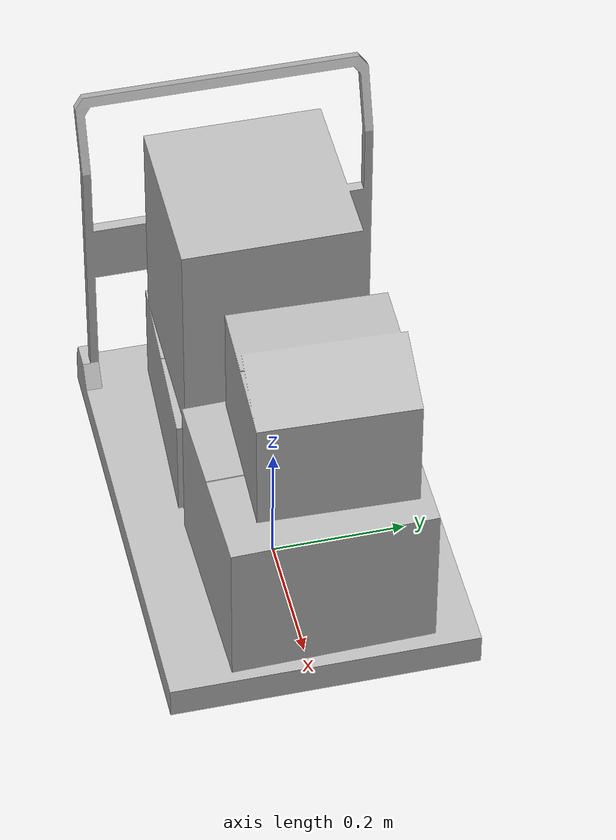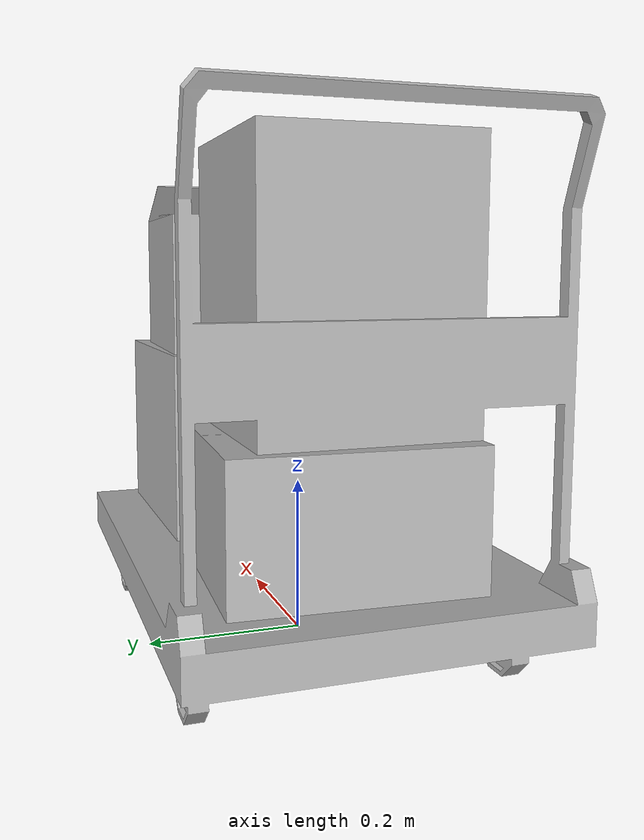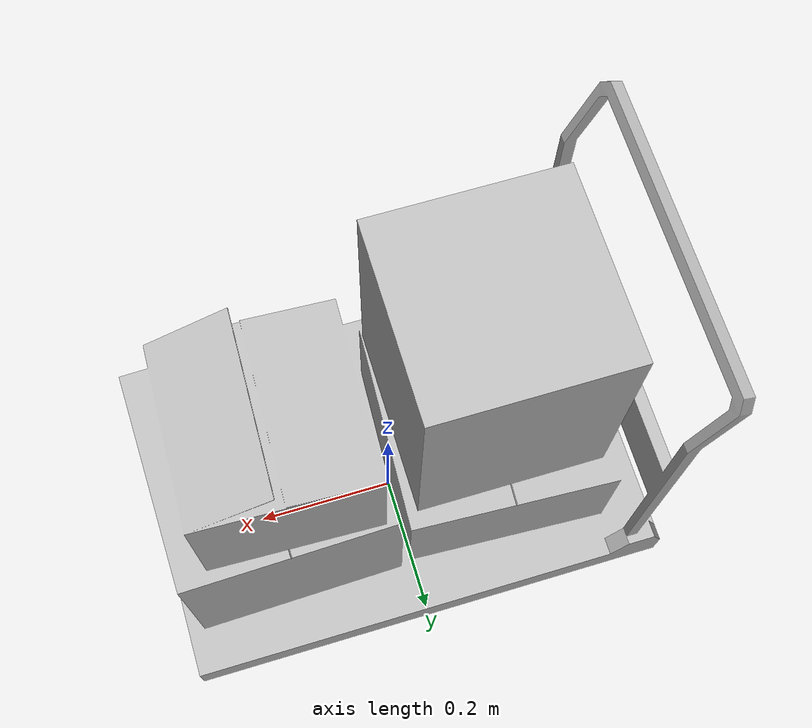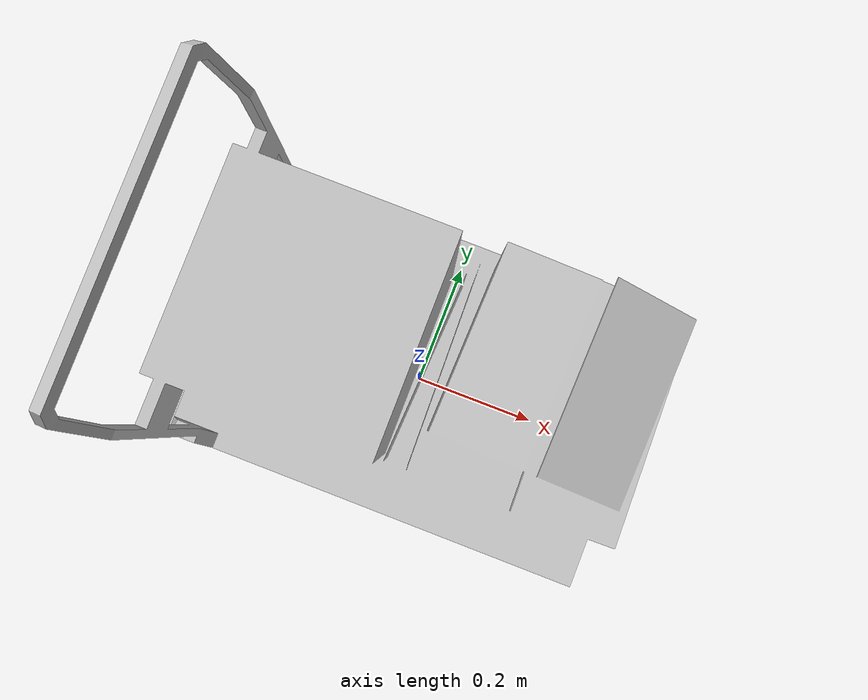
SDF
<?xml version='1.0' encoding='utf-8'?>
<sdf version="1.6">
  <model name="TrolleyBox1">
   <static>true</static>
    <link name="body">
      <pose>0 0 0 0 0 0</pose>

      <visual name="visual">
        <geometry>
          <mesh>
            <scale>0.75 0.75 0.75</scale>
            <uri>model://TrolleyBox1/meshes/TrolleyBox1.obj</uri>
          </mesh>
        </geometry>
      </visual>

      <collision name="collision">
        <geometry>
          <mesh>
            <scale>0.75 0.75 0.75</scale>
            <uri>model://TrolleyBox1/meshes/TrolleyBox1_Col.obj</uri>
          </mesh>
        </geometry>
      </collision>

    </link>
  </model>
</sdf>
